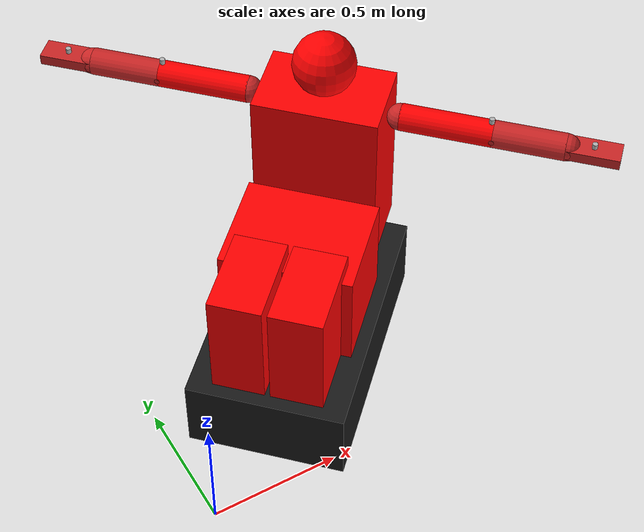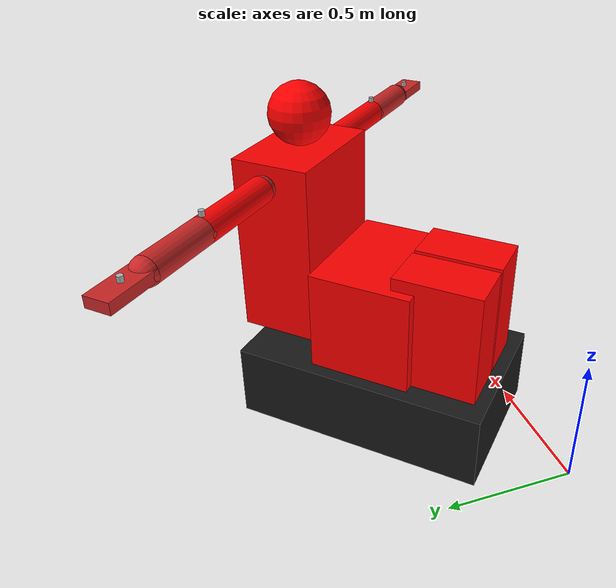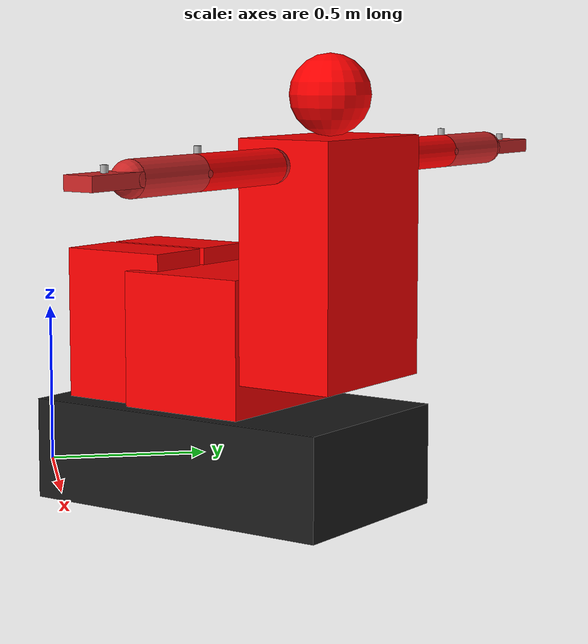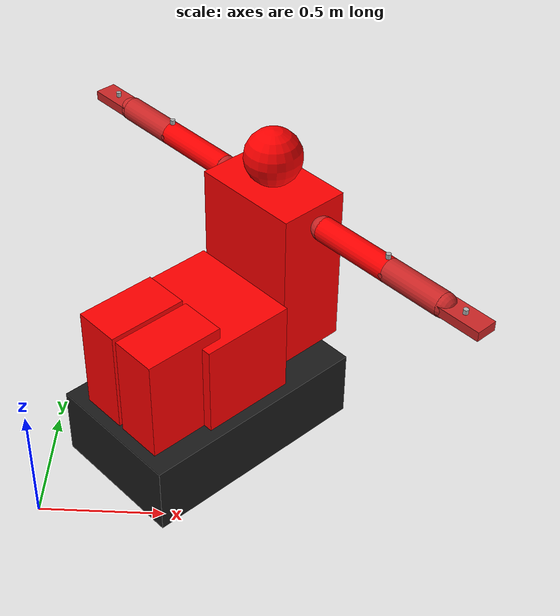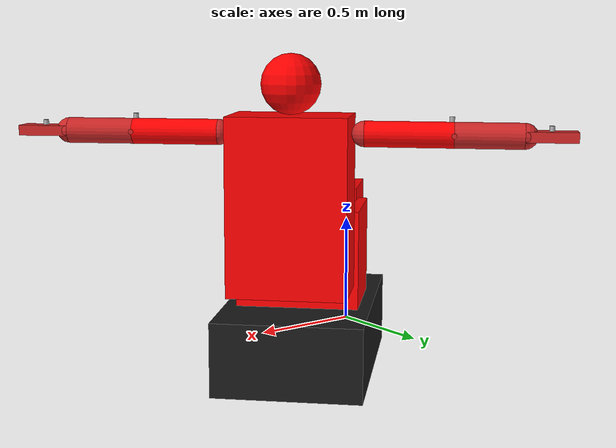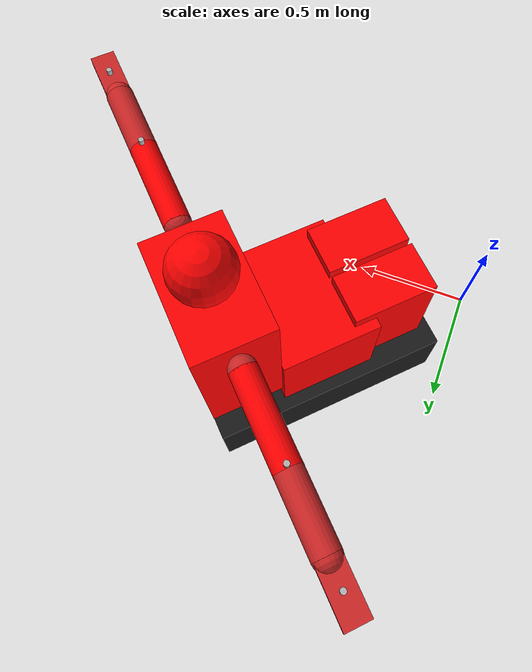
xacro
<?xml version="1.0"?>
<robot xmlns:xacro="http://wiki.ros.org/xacro" name="scalable_person">

  <xacro:arg name="pHeight" default="1.8"/>
  <xacro:property name="H" value="$(arg pHeight)"/>

  <xacro:property name="chest_width"     value="${0.259*H}" /> <!--${sfactor*0.3662}" /-->
  <xacro:property name="chest_depth"     value="${0.1667*H}" /> <!--${sfactor*0.30} /-->
  <xacro:property name="chest_height"    value="${0.387*H}" /> <!--${sfactor*0.6966} /-->
  <xacro:property name="head_radius"     value="${0.13*H/2}"/>

  <xacro:property name="shoulder_radius" value="${0.0277*H}"/>

  <xacro:property name="humerus_radius"  value="${shoulder_radius}"/>
  <xacro:property name="humerus_length"  value="${0.188*H}" />

  <xacro:property name="forearm_radius"  value="${shoulder_radius}"/>
  <xacro:property name="forearm_length"  value="${0.145*H}" />

  <xacro:property name="wrist_radius"    value="${shoulder_radius}"/>

  <xacro:property name="palm_length"     value="${0.108*H}" />
  <xacro:property name="palm_width"      value="${0.05*H}" />
  <xacro:property name="palm_thickness"  value="${0.0222*H}" />

  <!-- Add for independent usage of the person model -->
  <link name="world"/>

  <!-- Chair model -->

  <link name="chair_base" >
    <inertial>
      <origin xyz="0.0 0.0 0.0" />
      <mass value="1.0" />
      <inertia  ixx="1.0" ixy="0.0"  ixz="0.0"  iyy="100.0"  iyz="0.0"  izz="1.0" />
    </inertial>
    <visual>
      <origin xyz="0.0 0.0 0.0" rpy="0.0 0.0 0.0" />
      <geometry>
        <box size="0.60 1.00 0.30"/>
      </geometry>
      <material name="LightGrey">
        <color rgba="0.1 0.1 0.1 1"/>
      </material>
    </visual>
    <collision>
      <origin xyz="0.0 0.0 0.0" rpy="0.0 0.0 0.0" />
      <geometry>
        <box size="0.60 1.00 0.30"/>
      </geometry>
    </collision>
  </link>
  <gazebo reference="chair_base">
    <material>Gazebo/Gray</material>
  </gazebo>

  <joint name="chair_base_joint" type="fixed">
    <parent link="world" />
    <child link = "chair_base" />
    <origin xyz="0.641 0.501 0.14" rpy="0.0 0.0 -0.785" />
    <!-- 82cm (0.5798 in x and y)away from pedestal -->
  </joint>

<!-- Hip -->

  <link name="body_hip" >
    <inertial>
      <origin xyz="0.0 0.0 0.0" />
      <mass value="1.0" />
      <inertia  ixx="1.0" ixy="0.0"  ixz="0.0"  iyy="100.0"  iyz="0.0"  izz="1.0" />
    </inertial>
    <visual>
      <geometry>
        <box size="0.50 0.40 0.40"/>
        <!--box size="0.40 0.20 0.50"/-->
      </geometry>
      <material name="red">
          <color rgba="1 0 0 1"/>
      </material>
    </visual>
    <collision>
      <origin xyz="0.0 0.0 0.0" rpy="0.0 0.0 0.0" />
      <geometry>
        <box size="0.50 0.40 0.40"/>
        <!--box size="0.40 0.20 0.50"/-->     <!-- (0.387*H) chest height in y direction, (0.259*H)  chest width in z direction-->
      </geometry>
    </collision>
  </link>
  <gazebo reference="body_hip">
    <material>Gazebo/Red</material>
  </gazebo>

  <joint name="body_hip_joint" type="fixed">
   <parent link="chair_base" />
   <child link = "body_hip" />
   <origin xyz="0.0 0.0 0.35" rpy="0.0 0.0 0.0"/>
   <!--origin xyz="0.0 -0.40 -0.2273" rpy="1.57 0.0 -1.57" /-->
  </joint>

<!-- Chest -->
  <link name="body_chest" >
    <inertial>
      <origin xyz="0.0 0.0 0.0" />
      <mass value="1.0" />
      <inertia  ixx="1.0" ixy="0.0"  ixz="0.0"  iyy="100.0"  iyz="0.0"  izz="1.0" />
    </inertial>
    <visual>
      <origin xyz="0.0 0.0 0.0" rpy="0.0 0.0 0.0" />
      <geometry>
        <box size="${chest_width} ${chest_depth} ${chest_height}"/>
        <!--box size="0.3662 0.30  0.6966"/-->
        <!--box size="0.30 0.6966  0.3662"/-->     <!-- (0.387*H) chest height in y direction, (0.259*H)  chest width in z direction-->
      </geometry>
      <material name="red">
        <color rgba="1 0 0 1"/>
      </material>
    </visual>
    <collision>
      <origin xyz="0.0 0.0 0.0" rpy="0.0 0.0 0.0" />
      <geometry>
        <box size="${chest_width} ${chest_depth} ${chest_height}"/>
        <!--box size="0.3662 0.30  0.6966"/-->
        <!--box size="0.30 0.6966  0.3662"/-->     <!-- (0.387*H) chest height in y direction, (0.259*H)  chest width in z direction-->
      </geometry>
    </collision>
  </link>
  <gazebo reference="body_chest">
    <material>Gazebo/Red</material>
  </gazebo>

  <joint name="body_chest_joint" type="fixed">
    <parent link="body_hip" />
    <child link = "body_chest" />
    <origin xyz="0.0 ${0.20+chest_depth/2} ${-0.10+chest_height/2}" rpy="0.0 0.0 0.0"/>
    <!--origin xyz="0.0 0.35 0.20" rpy="0.0 0.0 0.0"/-->
    <!--origin xyz="0.0 -0.05 0.0083" rpy="1.57 0.0 -1.57" /-->   <!-- (0.0 -0.25 0.1483)   (0.387*H/2)-20 origin in z direction -->
  </joint>

  <!-- Head -->
  <link name="body_head" >
    <inertial>
      <origin xyz="0.0 0.0 0.0" />
      <mass value="1.0" />
      <inertia  ixx="1.0" ixy="0.0"  ixz="0.0"  iyy="100.0"  iyz="0.0"  izz="1.0" />
    </inertial>
    <visual>
      <geometry>
        <!--sphere radius= "0.11"/-->
        <sphere radius= "${head_radius}"/>   <!-- (0.13*H/2) head radius -->
      </geometry>
      <material name="red">
        <color rgba="1 0 0 1"/>
      </material>
    </visual>
    <collision>
      <geometry>
        <!--sphere radius= "0.11"/-->
        <sphere radius= "${head_radius}"/>
      </geometry>
    </collision>
  </link>
  <gazebo reference="body_head">
    <material>Gazebo/Red</material>
  </gazebo>

  <joint name="body_head_joint" type="fixed">
    <parent link="body_chest" />
    <child link = "body_head" />
    <!--origin xyz="0.0 0.0 0.4583" rpy="0.0 0.0 0.0" /-->
    <origin xyz="0.0 0.0 ${chest_height/2 + head_radius}" rpy="0.0 0.0 0.0" />  <!-- 31 cm + head radius in y direction  0.4583  -->
  </joint>

  <!-- Legs -->
  <link name="body_Lleg" >
    <inertial>
      <origin xyz="0.0 0.0 0.0" />
      <mass value="1.0" />
      <inertia  ixx="1.0" ixy="0.0"  ixz="0.0"  iyy="100.0"  iyz="0.0"  izz="1.0" />
    </inertial>
    <visual>
      <geometry>
        <box size="0.20 0.34 0.50"/>
      </geometry>
      <material name="red">
        <color rgba="1 0 0 1"/>
      </material>
    </visual>
    <collision>
      <origin xyz="0.0 0.0 0.0" rpy="0.0 0.0 0.0" />
      <geometry>
        <box size="0.20 0.34 0.50"/>
        <!--box size="0.30 0.6966  0.3662"/-->     <!-- (0.387*H) chest height in y direction, (0.259*H)  chest width in z direction-->
      </geometry>
    </collision>
  </link>
  <gazebo reference="body_Lleg">
    <material>Gazebo/Red</material>
  </gazebo>

  <joint name="body_Lleg_joint" type="fixed">
    <parent link="body_hip" />
    <child link = "body_Lleg" />
    <origin xyz="0.11 -0.28 0.0" rpy="0.0 0.0 0.0" />
  </joint>

  <link name="body_Rleg" >
    <inertial>
      <origin xyz="0.0 0.0 0.0" />
      <mass value="1.0" />
      <inertia  ixx="1.0" ixy="0.0"  ixz="0.0"  iyy="100.0"  iyz="0.0"  izz="1.0" />
    </inertial>
    <visual>
      <geometry>
        <box size="0.20 0.34 0.50"/>
      </geometry>
      <material name="red">
        <color rgba="1 0 0 1"/>
      </material>
    </visual>
    <collision>
      <origin xyz="0.0 0.0 0.0" rpy="0.0 0.0 0.0" />
      <geometry>
        <box size="0.20 0.34 0.50"/>
        <!--box size="0.30 0.6966  0.3662"/-->     <!-- (0.387*H) chest height in y direction, (0.259*H)  chest width in z direction-->
      </geometry>
    </collision>
  </link>
  <gazebo reference="body_Rleg">
    <material>Gazebo/Red</material>
  </gazebo>

  <joint name="body_Rleg_joint" type="fixed">
    <parent link="body_hip" />
    <child link = "body_Rleg" />
    <origin xyz="-0.11 -0.28 0.0" rpy="0.0 0.0 0.0" />
  </joint>

<!-- Left Arm -->

  <link name="left_shoulder">
    <inertial>
      <origin xyz="0.0 0.0 0.0" />
      <mass value="1.0" />
      <inertia  ixx="1.0" ixy="0.0"  ixz="0.0"  iyy="100.0"  iyz="0.0"  izz="1.0" />
    </inertial>
    <visual>
      <origin rpy="0 0 0" xyz="0 0 0"/>
      <geometry>
        <!--sphere radius="0.05"/-->
        <sphere radius="${shoulder_radius}"/>
      </geometry>
    </visual>
    <collision>
      <geometry>
        <!--sphere radius="0.05"/-->
        <sphere radius="${shoulder_radius}"/>
      </geometry>
    </collision>
  </link>
  <gazebo reference="left_shoulder">
    <material>Gazebo/Red</material>
  </gazebo>

  <joint name="LShoulder" type="fixed" >
    <origin xyz="${chest_width/2 + shoulder_radius} 0.0 ${0.8*chest_height/2}" />
    <!--origin xyz="0.2331 0.0 0.2855" /-->
    <!--origin xyz="0.3583 0.0 0.2855" /-->   <!-- (0.259*H)/2 width in z direction, (0.387*H)/2 chest height in y direction  -->
    <parent link="body_chest" />
    <child link="left_shoulder" />
  </joint>

  <link name="left_shoulder_psi_link" >
    <inertial>
      <origin xyz="0.0 0.0 0.0" />
      <mass value="1.0" />
      <inertia  ixx="1.0" ixy="0.0"  ixz="0.0"  iyy="100.0"  iyz="0.0"  izz="1.0" />
    </inertial>
  </link>
  <gazebo reference="left_shoulder_psi_link">
    <material>Gazebo/Red</material>
  </gazebo>

  <joint name="LShoulderPsi" type="revolute" >
    <limit effort="1000.0" lower="-3.14" upper="3.14" velocity="0.5" />
    <origin rpy="0 0 0" />
    <parent link="left_shoulder" />
    <child link="left_shoulder_psi_link" />
    <axis xyz="0 0 1" />
  </joint>

  <link name="left_shoulder_theta_link" >
    <inertial>
      <origin xyz="0.0 0.0 0.0" />
      <mass value="1.0" />
      <inertia  ixx="1.0" ixy="0.0"  ixz="0.0"  iyy="100.0"  iyz="0.0"  izz="1.0" />
    </inertial>
  </link>
  <gazebo reference="left_shoulder_theta_link">
    <material>Gazebo/Red</material>
  </gazebo>

  <joint name="LShoulderTheta" type="revolute" >
    <limit effort="1000.0" lower="3.14" upper="-3.14" velocity="0.5" />
    <parent link="left_shoulder_psi_link"/>
    <child link="left_shoulder_theta_link"/>
    <origin rpy="1.5708 0 0" />
    <axis xyz="0 0 1" />
  </joint>

  <link name="left_shoulder_phi_link" >
    <inertial>
      <origin xyz="0.0 0.0 0.0" />
      <mass value="1.0" />
      <inertia  ixx="1.0" ixy="0.0"  ixz="0.0"  iyy="100.0"  iyz="0.0"  izz="1.0" />
    </inertial>
  </link>
  <gazebo reference="left_shoulder_phi_link">
    <material>Gazebo/Red</material>
  </gazebo>

  <joint name="LShoulderPhi" type="revolute" >
    <limit effort="1000.0" lower="3.14" upper="-3.14" velocity="0.5" />
    <parent link="left_shoulder_theta_link"/>
    <child link="left_shoulder_phi_link"/>
    <origin rpy="1.5708 0 1.5708" />
    <axis xyz="0 0 1" />
  </joint>

  <link name="left_humerus">
    <inertial>
      <origin xyz="0.0 0.0 0.0" />
      <mass value="1.0" />
      <inertia  ixx="1.0" ixy="0.0"  ixz="0.0"  iyy="100.0"  iyz="0.0"  izz="1.0" />
    </inertial>
    <visual>
      <origin rpy="0 0 0" xyz="0 0 0"/>
      <geometry>
        <cylinder radius="${humerus_radius}" length="${humerus_length}"/> <!-- 0.188 H lenght   -->
        <!--cylinder radius="0.05" length="0.3384"/-->
      </geometry>
      <material name="red">
        <color rgba="1 0 0 1"/>
      </material>
    </visual>
    <collision>
      <geometry>
        <cylinder radius="${humerus_radius}" length="${humerus_length}"/>
        <!--cylinder radius="0.05" length="0.3384"/-->
      </geometry>
    </collision>
  </link>
  <gazebo reference="left_humerus">
    <material>Gazebo/Red</material>
  </gazebo>

  <joint name="LShoulderHumrus" type="fixed" >
    <parent link="left_shoulder_phi_link"/>
    <child link="left_humerus"/>
    <origin rpy="0 0 0" xyz="0 0 ${humerus_length/2}" />
    <!--origin rpy="0 0 0" xyz="0 0 0.1692" /-->  <!-- z values changes with dimension of the body , 0.188*H/2 -->
  </joint>

  <link name="left_humerus_sensor">
    <inertial>
      <origin xyz="0.0 0.0 0.0" />
      <mass value="1.0" />
      <inertia  ixx="1.0" ixy="0.0"  ixz="0.0"  iyy="100.0"  iyz="0.0"  izz="1.0" />
    </inertial>
    <visual>
      <origin rpy="0 0 0" xyz="0 0 0.01"/>
      <geometry>
        <cylinder radius="0.01" length="0.02"/>
      </geometry>
      <material name="LightGrey">
        <color rgba="0.7 0.7 0.7 1.0"/>
      </material>
    </visual>
    <collision>
      <geometry>
        <cylinder radius="0.01" length="0.02"/>
      </geometry>
    </collision>
  </link>
  <gazebo reference="left_humerus_sensor">
    <material>Gazebo/Red</material>
  </gazebo>

  <joint name="LSensorHumerus" type="fixed" >
    <parent link="left_humerus"/>
    <child link="left_humerus_sensor"/>
    <origin rpy="1.5708 0 1.5708" xyz="${forearm_radius} 0.0 ${-0.01+humerus_length/2}" />
  </joint>

  <link name="left_elbow_joint">
    <inertial>
      <origin xyz="0.0 0.0 0.0" />
      <mass value="1.0" />
      <inertia  ixx="1.0" ixy="0.0"  ixz="0.0"  iyy="100.0"  iyz="0.0"  izz="1.0" />
    </inertial>
    <visual>
      <origin rpy="0 0 0" xyz="0 0 0"/>
      <geometry>
        <cylinder radius="0.01" length="${humerus_radius*2}"/>
      </geometry>
    </visual>
    <collision>
      <geometry>
        <cylinder radius="0.01" length="${humerus_radius*2}"/>
      </geometry>
    </collision>
  </link>
  <gazebo reference="left_elbow_joint">
    <material>Gazebo/Red</material>
  </gazebo>

  <joint name="LElbow" type="revolute" >
    <limit effort="1000.0" lower="-2.67" upper="0" velocity="0.5" />
    <origin rpy="4.71239 0 0" xyz="0 0 ${humerus_length/2}"/>   <!-- z values changes with dimension of the body , 0.188*H/2 -->
    <axis xyz="0 0 1" />
    <parent link="left_humerus" />
    <child link="left_elbow_joint" />
  </joint>

  <!-- left hand -->

  <link name="left_fore_arm">
    <inertial>
      <origin xyz="0.0 0.0 0.0" />
      <mass value="1.0" />
      <inertia  ixx="1.0" ixy="0.0"  ixz="0.0"  iyy="100.0"  iyz="0.0"  izz="1.0" />
    </inertial>
    <visual>
      <origin rpy="0 0 0" xyz="0 0 0 "/>
      <geometry>
        <cylinder radius="${forearm_radius}" length="${forearm_length}"/>
        <!--cylinder radius="0.05" length="0.261"/--> <!-- length values changes with dimension of the body 0.145*H -->
      </geometry>
    </visual>
    <collision>
      <geometry>
        <cylinder radius="${forearm_radius}" length="${forearm_length}"/>
        <!--cylinder radius="0.05" length="0.261"/-->
      </geometry>
    </collision>
  </link>
  <gazebo reference="left_fore_arm">
    <material>Gazebo/Red</material>
  </gazebo>

  <joint name="LForeArm" type="fixed" >
    <origin rpy="1.5708 0 0" xyz="0.0 -${forearm_length/2} 0.0" /> <!-- y values changes with dimension of the body, 0.145*H/2  -->
    <parent link="left_elbow_joint" />
    <child link="left_fore_arm" />
  </joint>

  <link name="left_wrist">
    <inertial>
      <origin xyz="0.0 0.0 0.0" />
      <mass value="1.0" />
      <inertia  ixx="1.0" ixy="0.0"  ixz="0.0"  iyy="100.0"  iyz="0.0"  izz="1.0" />
    </inertial>
    <visual>
      <origin rpy="0 0 0" xyz="0 0 0"/>
      <geometry>
        <sphere radius="${wrist_radius}"/>
      </geometry>
    </visual>
    <collision>
      <geometry>
        <sphere radius= "${wrist_radius}"/>
      </geometry>
    </collision>
  </link>
  <gazebo reference="left_wrist">
    <material>Gazebo/Red</material>
  </gazebo>

  <joint name="LWrist" type="fixed" >
    <origin xyz="0 0 ${forearm_length/2}" />   <!-- values changes with dimension of the body, 0.145*H/2 -->
    <parent link="left_fore_arm" />
    <child link="left_wrist" />
  </joint>

  <link name="left_wrist_psi_link" >
    <inertial>
      <origin xyz="0.0 0.0 0.0" />
      <mass value="1.0" />
      <inertia  ixx="1.0" ixy="0.0"  ixz="0.0"  iyy="100.0"  iyz="0.0"  izz="1.0" />
    </inertial>
  </link>
  <gazebo reference="left_wrist_psi_link">
    <material>Gazebo/Red</material>
  </gazebo>

  <joint name="LWristPsi" type="revolute" >
    <limit effort="1000.0" lower="3.14" upper="-3.14" velocity="0.5" />
    <origin rpy="0 0 0" />
    <parent link="left_wrist" />
    <child link="left_wrist_psi_link" />
    <axis xyz="0 0 1" />
  </joint>

  <link name="left_wrist_theta_link" >
    <inertial>
      <origin xyz="0.0 0.0 0.0" />
      <mass value="1.0" />
      <inertia  ixx="1.0" ixy="0.0"  ixz="0.0"  iyy="100.0"  iyz="0.0"  izz="1.0" />
    </inertial>
  </link>
  <gazebo reference="left_wrist_theta_link">
    <material>Gazebo/Red</material>
  </gazebo>

  <joint name="LWristTheta" type="revolute" >
    <limit effort="1000.0" lower="3.14" upper="-3.14" velocity="0.5" />
    <origin rpy="1.5708 0 0" />
    <parent link="left_wrist_psi_link"/>
    <child link="left_wrist_theta_link"/>
    <axis xyz="0 0 1" />
  </joint>

  <link name="left_wrist_phi_link" >
    <inertial>
      <origin xyz="0.0 0.0 0.0" />
      <mass value="1.0" />
      <inertia  ixx="1.0" ixy="0.0"  ixz="0.0"  iyy="100.0"  iyz="0.0"  izz="1.0" />
    </inertial>
  </link>
  <gazebo reference="left_wrist_phi_link">
    <material>Gazebo/Red</material>
  </gazebo>

  <joint name="LWristPhi" type="revolute" >
    <limit effort="1000.0" lower="3.14" upper="-3.14" velocity="0.5" />
    <parent link="left_wrist_theta_link"/>
    <child link="left_wrist_phi_link"/>
    <origin rpy="1.5708 0 1.5708" />
    <axis xyz="0 0 1" />
  </joint>

  <link name="left_palm">
    <inertial>
      <origin xyz="0.0 0.0 0.0" />
      <mass value="1.0" />
      <inertia  ixx="1.0" ixy="0.0"  ixz="0.0"  iyy="100.0"  iyz="0.0"  izz="1.0" />
    </inertial>
    <visual>
      <origin rpy="0 0 0" xyz="0 0 0"/>
      <geometry>
        <box size="${palm_width} ${palm_thickness} ${palm_length}"/>
        <!--box size="0.09 0.04 0.1944"/-->
      </geometry>
    </visual>
    <collision>
      <origin rpy="0 0 0" xyz="0 0 0"/>
      <geometry>
        <box size="${palm_width} ${palm_thickness} ${palm_length}"/>
        <!--box size="0.09 0.04 0.1944"/-->
      </geometry>
    </collision>
  </link>
  <gazebo reference="left_palm">
    <material>Gazebo/Red</material>
  </gazebo>

  <joint name="LPalm" type="fixed" >
    <parent link="left_wrist_phi_link"/>
    <child link="left_palm"/>
    <origin rpy="-1.5708 0 -1.5708" xyz="${palm_length/2} 0 0"  />  <!-- x values changes with dimension of the body 0.108*H/2  -->
  </joint>

  <link name="left_palm_sensor">
    <inertial>
      <origin xyz="0.0 0.0 0.0" />
      <mass value="1.0" />
      <inertia  ixx="1.0" ixy="0.0"  ixz="0.0"  iyy="100.0"  iyz="0.0"  izz="1.0" />
    </inertial>
    <visual>
      <origin rpy="0 0 0" xyz="0 0 0.01"/>
      <geometry>
        <cylinder radius="0.01" length="0.02"/>
      </geometry>
      <material name="LightGrey">
        <color rgba="0.7 0.7 0.7 1.0"/>
      </material>
    </visual>
    <collision>
      <origin rpy="0 0 0" xyz="0 0 0.01"/>
      <geometry>
        <cylinder radius="0.01" length="0.02"/>
      </geometry>
    </collision>
  </link>
  <gazebo reference="left_palm_sensor">
    <material>Gazebo/Red</material>
  </gazebo>

  <joint name="LSensorPalm" type="fixed" >
    <parent link="left_palm"/>
    <child link="left_palm_sensor"/>
    <origin rpy="1.5708 0 0" xyz="0 -${palm_thickness-0.02} 0" />  <!-- z values changes with dimension of the body  -->
  </joint>

<!-- Right Arm -->

  <link name="right_shoulder">
    <inertial>
      <origin xyz="0.0 0.0 0.0" />
      <mass value="1.0" />
      <inertia  ixx="1.0" ixy="0.0"  ixz="0.0"  iyy="100.0"  iyz="0.0"  izz="1.0" />
    </inertial>
    <visual>
      <origin rpy="0 0 0" xyz="0 0 0"/>
      <geometry>
        <!--sphere radius="0.05"/-->
        <sphere radius="${shoulder_radius}"/>
      </geometry>
    </visual>
    <collision>
      <origin rpy="0 0 0" xyz="0 0 0"/>
      <geometry>
        <!--sphere radius="0.05"/-->
        <sphere radius="${shoulder_radius}"/>
      </geometry>
    </collision>
  </link>
  <gazebo reference="right_shoulder">
    <material>Gazebo/Red</material>
  </gazebo>

  <joint name="RShoulder" type="fixed" >
    <origin xyz="-${chest_width/2 + shoulder_radius} 0.0 ${0.8*chest_height/2}" rpy="0.0 3.14 0.0"/>
    <!--origin xyz="-0.2331 0.0 0.2855" rpy="0.0 3.14 0.0"/-->   <!-- (0.259*H)/2 width in z direction, (0.387*H)/2 chest height in y direction  -->
    <parent link="body_chest" />
    <child link="right_shoulder" />
  </joint>

  <link name="right_shoulder_psi_link" >
    <inertial>
      <origin xyz="0.0 0.0 0.0" />
      <mass value="1.0" />
      <inertia  ixx="1.0" ixy="0.0"  ixz="0.0"  iyy="100.0"  iyz="0.0"  izz="1.0" />
    </inertial>
  </link>
  <gazebo reference="right_shoulder_psi_link">
    <material>Gazebo/Red</material>
  </gazebo>

  <joint name="RShoulderPsi" type="revolute" >
    <limit effort="1000.0" lower="-3.14" upper="3.14" velocity="0.5" />
    <origin rpy="0 0 0" />
    <parent link="right_shoulder" />
    <child link="right_shoulder_psi_link" />
    <axis xyz="0 0 1" />
  </joint>

  <link name="right_shoulder_theta_link" >
    <inertial>
      <origin xyz="0.0 0.0 0.0" />
      <mass value="1.0" />
      <inertia  ixx="1.0" ixy="0.0"  ixz="0.0"  iyy="100.0"  iyz="0.0"  izz="1.0" />
    </inertial>
  </link>
  <gazebo reference="right_shoulder_theta_link">
    <material>Gazebo/Red</material>
  </gazebo>

  <joint name="RShoulderTheta" type="revolute" >
    <limit effort="1000.0" lower="3.14" upper="-3.14" velocity="0.5" />
    <parent link="right_shoulder_psi_link"/>
    <child link="right_shoulder_theta_link"/>
    <origin rpy="1.5708 0 0" />
    <axis xyz="0 0 1" />
  </joint>

  <link name="right_shoulder_phi_link" >
    <inertial>
      <origin xyz="0.0 0.0 0.0" />
      <mass value="1.0" />
      <inertia  ixx="1.0" ixy="0.0"  ixz="0.0"  iyy="100.0"  iyz="0.0"  izz="1.0" />
    </inertial>
  </link>
  <gazebo reference="right_shoulder_phi_link">
    <material>Gazebo/Red</material>
  </gazebo>

  <joint name="RShoulderPhi" type="revolute" >
    <limit effort="1000.0" lower="3.14" upper="-3.14" velocity="0.5" />
    <parent link="right_shoulder_theta_link"/>
    <child link="right_shoulder_phi_link"/>
    <origin rpy="1.5708 0 1.5708" />
    <axis xyz="0 0 1" />
  </joint>

  <link name="right_humerus">
    <inertial>
      <origin xyz="0.0 0.0 0.0" />
      <mass value="1.0" />
      <inertia  ixx="1.0" ixy="0.0"  ixz="0.0"  iyy="100.0"  iyz="0.0"  izz="1.0" />
    </inertial>
    <visual>
      <origin rpy="0 0 0" xyz="0 0 0"/>
      <geometry>
        <cylinder radius="${humerus_radius}" length="${humerus_length}"/>
        <!--cylinder radius="0.05" length="0.3384"/--> <!-- 0.188 H lenght   -->
      </geometry>
      <material name="red">
        <color rgba="1 0 0 1"/>
      </material>
    </visual>
    <collision>
      <geometry>
        <cylinder radius="${humerus_radius}" length="${humerus_length}"/>
        <!--cylinder radius="0.05" length="0.3384"/-->
      </geometry>
    </collision>
  </link>
  <gazebo reference="right_humerus">
    <material>Gazebo/Red</material>
  </gazebo>

  <joint name="RShoulderHumrus" type="fixed" >
    <parent link="right_shoulder_phi_link"/>
    <child link="right_humerus"/>
    <origin rpy="0 0 0" xyz="0 0 ${humerus_length/2}" />
    <!--origin rpy="0 0 0" xyz="0 0 0.1692" /-->  <!-- z values changes with dimension of the body , 0.188*H/2 -->
  </joint>

  <link name="right_humerus_sensor">
    <inertial>
      <origin xyz="0.0 0.0 0.0" />
      <mass value="1.0" />
      <inertia  ixx="1.0" ixy="0.0"  ixz="0.0"  iyy="100.0"  iyz="0.0"  izz="1.0" />
    </inertial>
    <visual>
      <origin rpy="0 0 0" xyz="0 0 0.01"/>
      <geometry>
        <cylinder radius="0.01" length="0.02"/>
      </geometry>
      <material name="LightGrey">
        <color rgba="0.7 0.7 0.7 1.0"/>
      </material>
    </visual>
    <collision>
      <geometry>
        <cylinder radius="0.01" length="0.02"/>
      </geometry>
    </collision>
  </link>
  <gazebo reference="right_humerus_sensor">
    <material>Gazebo/Red</material>
  </gazebo>

  <joint name="RSensorHumerus" type="fixed" >
    <parent link="right_humerus"/>
    <child link="right_humerus_sensor"/>
    <origin rpy="-1.5708 0 1.5708" xyz="-${forearm_radius} 0.0 ${-0.01+humerus_length/2}" />
  </joint>

  <link name="right_elbow_joint">
    <inertial>
      <origin xyz="0.0 0.0 0.0" />
      <mass value="1.0" />
      <inertia  ixx="1.0" ixy="0.0"  ixz="0.0"  iyy="100.0"  iyz="0.0"  izz="1.0" />
    </inertial>
    <visual>
      <origin rpy="0 0 0" xyz="0 0 0"/>
      <geometry>
        <cylinder radius="0.01" length="${humerus_radius*2}"/>
      </geometry>
    </visual>
    <collision>
      <geometry>
        <cylinder radius="0.01" length="${humerus_radius*2}"/>
      </geometry>
    </collision>
  </link>
  <gazebo reference="right_elbow_joint">
    <material>Gazebo/Red</material>
  </gazebo>

  <joint name="RElbow" type="revolute" >
    <limit effort="1000.0" lower="0.0" upper="2.67" velocity="0.5" />
    <origin rpy="4.71239 0 0" xyz="0 0 ${humerus_length/2}"/>   <!-- z values changes with dimension of the body , 0.188*H/2 -->
    <axis xyz="0 0 1" />
    <parent link="right_humerus" />
    <child link="right_elbow_joint" />
  </joint>

  <!-- Right hand -->

  <link name="right_fore_arm">
    <inertial>
      <origin xyz="0.0 0.0 0.0" />
      <mass value="1.0" />
      <inertia  ixx="1.0" ixy="0.0"  ixz="0.0"  iyy="100.0"  iyz="0.0"  izz="1.0" />
    </inertial>
    <visual>
      <origin rpy="0 0 0" xyz="0 0 0 "/>
      <geometry>
        <cylinder radius="${forearm_radius}" length="${forearm_length}"/> <!-- length values changes with dimension of the body 0.145*H -->
      </geometry>
    </visual>
    <collision>
      <geometry>
        <cylinder radius="${forearm_radius}" length="${forearm_length}"/>
      </geometry>
    </collision>
  </link>
  <gazebo reference="right_fore_arm">
    <material>Gazebo/Red</material>
  </gazebo>

  <joint name="RForeArm" type="fixed" >
    <origin rpy="1.5708 0 0" xyz="0.0 -${forearm_length/2} 0.0" /> <!-- y values changes with dimension of the body, 0.145*H/2  -->
    <parent link="right_elbow_joint" />
    <child link="right_fore_arm" />
  </joint>

  <link name="right_wrist">
    <inertial>
      <origin xyz="0.0 0.0 0.0" />
      <mass value="1.0" />
      <inertia  ixx="1.0" ixy="0.0"  ixz="0.0"  iyy="100.0"  iyz="0.0"  izz="1.0" />
    </inertial>
    <visual>
      <origin rpy="0 0 0" xyz="0 0 0"/>
      <geometry>
        <sphere radius="${wrist_radius}"/>
      </geometry>
    </visual>
    <collision>
      <geometry>
        <sphere radius= "${wrist_radius}"/>
      </geometry>
    </collision>
  </link>
  <gazebo reference="right_wrist">
    <material>Gazebo/Red</material>
  </gazebo>

  <joint name="RWrist" type="fixed" >
    <origin xyz="0 0 ${forearm_length/2}" />   <!-- values changes with dimension of the body, 0.145*H/2 -->
    <parent link="right_fore_arm" />
    <child link="right_wrist" />
  </joint>

  <link name="right_wrist_psi_link" >
    <inertial>
      <origin xyz="0.0 0.0 0.0" />
      <mass value="1.0" />
      <inertia  ixx="1.0" ixy="0.0"  ixz="0.0"  iyy="100.0"  iyz="0.0"  izz="1.0" />
    </inertial>
  </link>
  <gazebo reference="right_wrist_psi_link">
    <material>Gazebo/Red</material>
  </gazebo>

  <joint name="RWristPsi" type="revolute" >
    <limit effort="1000.0" lower="-3.14" upper="3.14" velocity="0.5" />
    <origin rpy="0 0 0" />
    <parent link="right_wrist" />
    <child link="right_wrist_psi_link" />
    <axis xyz="0 0 1" />
  </joint>

  <link name="right_wrist_theta_link" >
    <inertial>
      <origin xyz="0.0 0.0 0.0" />
      <mass value="1.0" />
      <inertia  ixx="1.0" ixy="0.0"  ixz="0.0"  iyy="100.0"  iyz="0.0"  izz="1.0" />
    </inertial>
  </link>
  <gazebo reference="right_wrist_theta_link">
    <material>Gazebo/Red</material>
  </gazebo>

  <joint name="RWristTheta" type="revolute" >
    <limit effort="1000.0" lower="-3.14" upper="3.14" velocity="0.5" />
    <origin rpy="1.5708 0 0" />
    <parent link="right_wrist_psi_link"/>
    <child link="right_wrist_theta_link"/>
    <axis xyz="0 0 1" />
  </joint>

  <link name="right_wrist_phi_link" >
    <inertial>
      <origin xyz="0.0 0.0 0.0" />
      <mass value="1.0" />
      <inertia  ixx="1.0" ixy="0.0"  ixz="0.0"  iyy="100.0"  iyz="0.0"  izz="1.0" />
    </inertial>
  </link>
  <gazebo reference="right_wrist_phi_link">
    <material>Gazebo/Red</material>
  </gazebo>

  <joint name="RWristPhi" type="revolute" >
    <limit effort="1000.0" lower="-3.14" upper="3.14" velocity="0.5" />
    <parent link="right_wrist_theta_link"/>
    <child link="right_wrist_phi_link"/>
    <origin rpy="1.5708 0 1.5708" />
    <axis xyz="0 0 1" />
  </joint>

  <link name="right_palm">
    <inertial>
      <origin xyz="0.0 0.0 0.0" />
      <mass value="1.0" />
      <inertia  ixx="1.0" ixy="0.0"  ixz="0.0"  iyy="100.0"  iyz="0.0"  izz="1.0" />
    </inertial>
    <visual>
      <origin rpy="0 0 0" xyz="0 0 0"/>
      <geometry>
        <box size="${palm_width} ${palm_thickness} ${palm_length}"/>
        <!--box size="0.09 0.04 0.1944"/-->
      </geometry>
    </visual>
    <collision>
      <origin rpy="0 0 0" xyz="0 0 0"/>
      <geometry>
        <box size="${palm_width} ${palm_thickness} ${palm_length}"/>
        <!--box size="0.09 0.04 0.1944"/-->
      </geometry>
    </collision>
  </link>
  <gazebo reference="right_palm">
    <material>Gazebo/Red</material>
  </gazebo>

  <joint name="RPalm" type="fixed" >
    <parent link="right_wrist_phi_link"/>
    <child link="right_palm"/>
    <origin rpy="-1.5708 0 -1.5708" xyz="${palm_length/2} 0 0"  />  <!-- x values changes with dimension of the body 0.108*H/2  -->
  </joint>

  <link name="right_palm_sensor">
    <inertial>
      <origin xyz="0.0 0.0 0.0" />
      <mass value="1.0" />
      <inertia  ixx="1.0" ixy="0.0"  ixz="0.0"  iyy="100.0"  iyz="0.0"  izz="1.0" />
    </inertial>
    <visual>
      <origin rpy="0 0 0" xyz="0 0 0.01"/>
      <geometry>
        <cylinder radius="0.01" length="0.02"/>
      </geometry>
      <material name="LightGrey">
        <color rgba="0.7 0.7 0.7 1.0"/>
      </material>
    </visual>
    <collision>
      <origin rpy="0 0 0" xyz="0 0 0.01"/>
      <geometry>
        <cylinder radius="0.01" length="0.02"/>
      </geometry>
    </collision>
  </link>
  <gazebo reference="right_palm_sensor">
    <material>Gazebo/Red</material>
  </gazebo>

  <joint name="RSensorPalm" type="fixed" >
    <parent link="right_palm"/>
    <child link="right_palm_sensor"/>
    <origin rpy="1.5708 0 0" xyz="0 ${palm_thickness} 0" />  <!-- z values changes with dimension of the body  -->
  </joint>

</robot>
